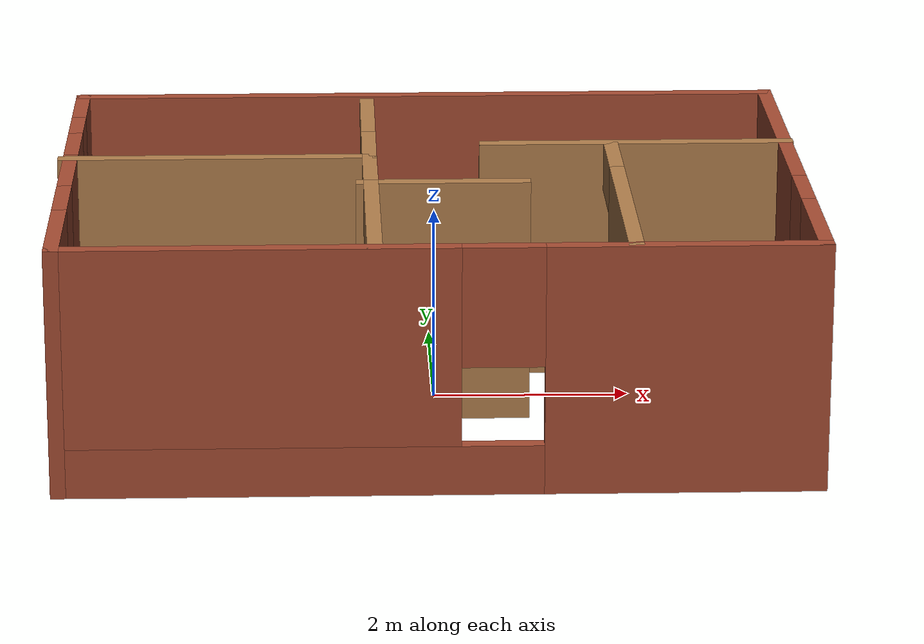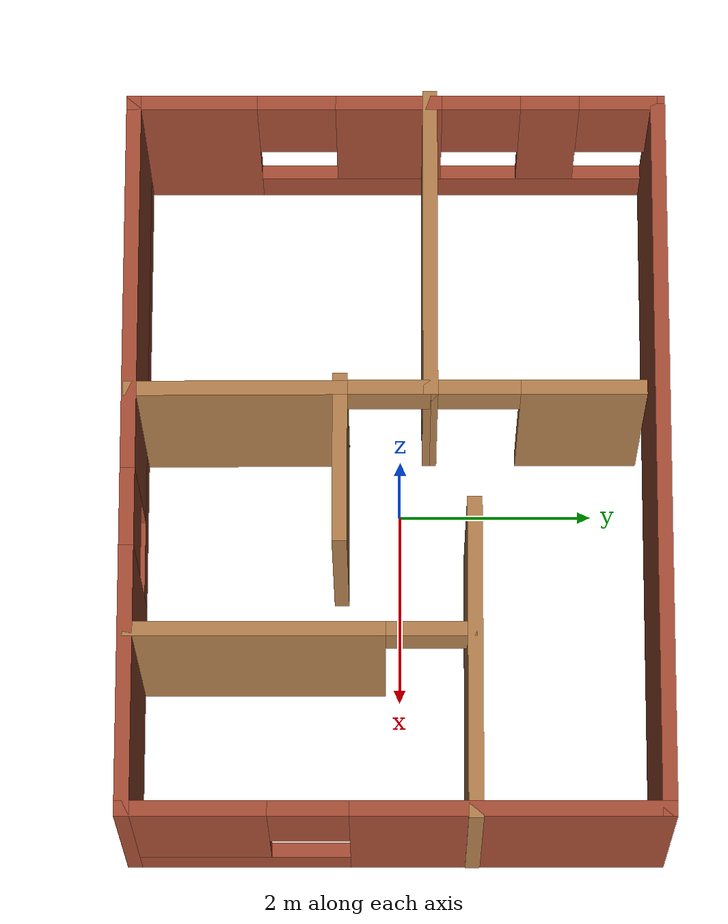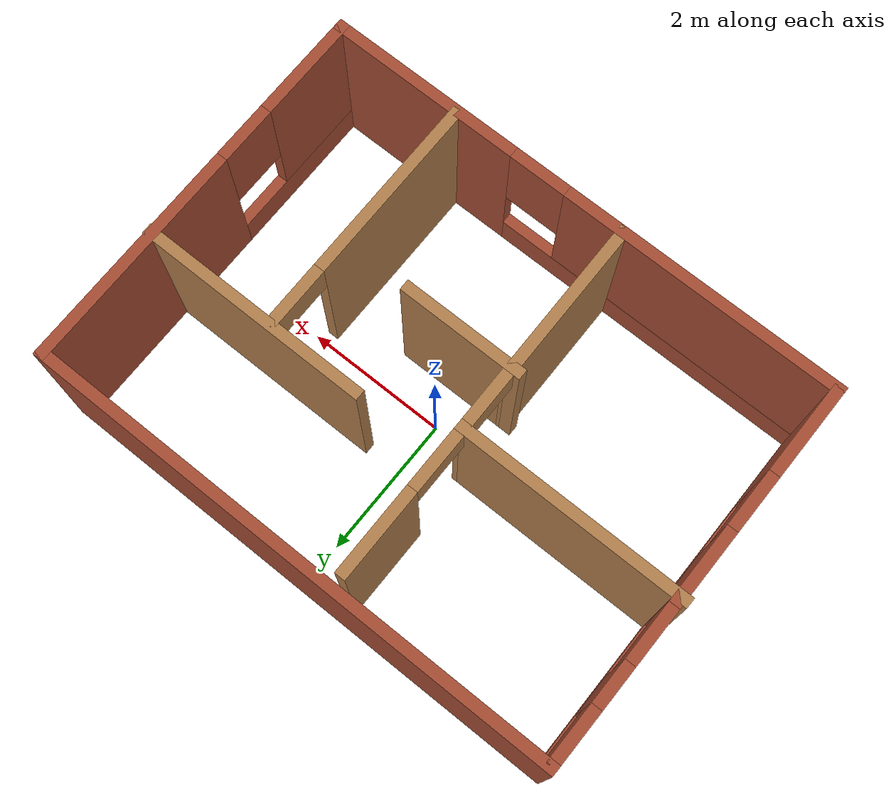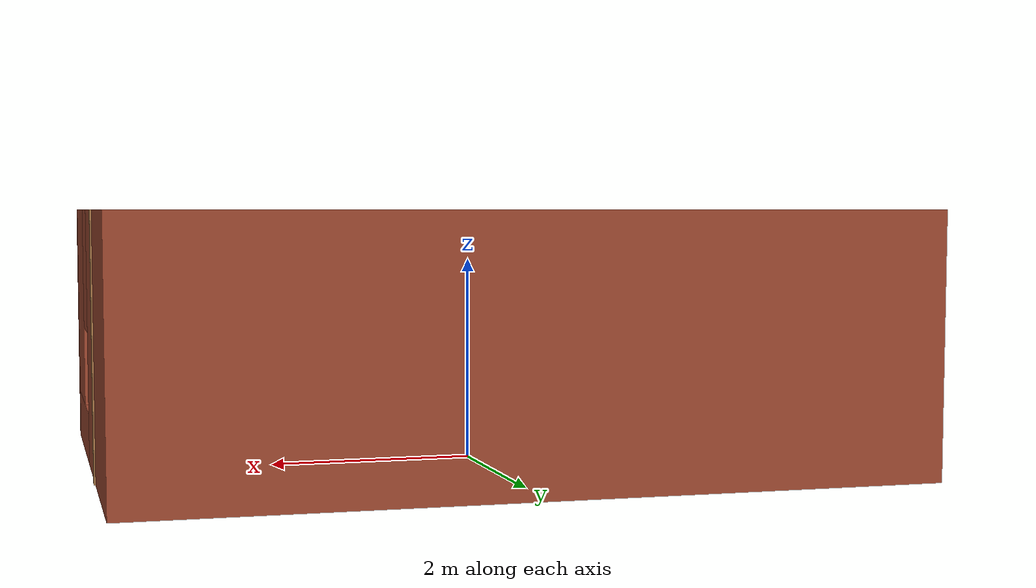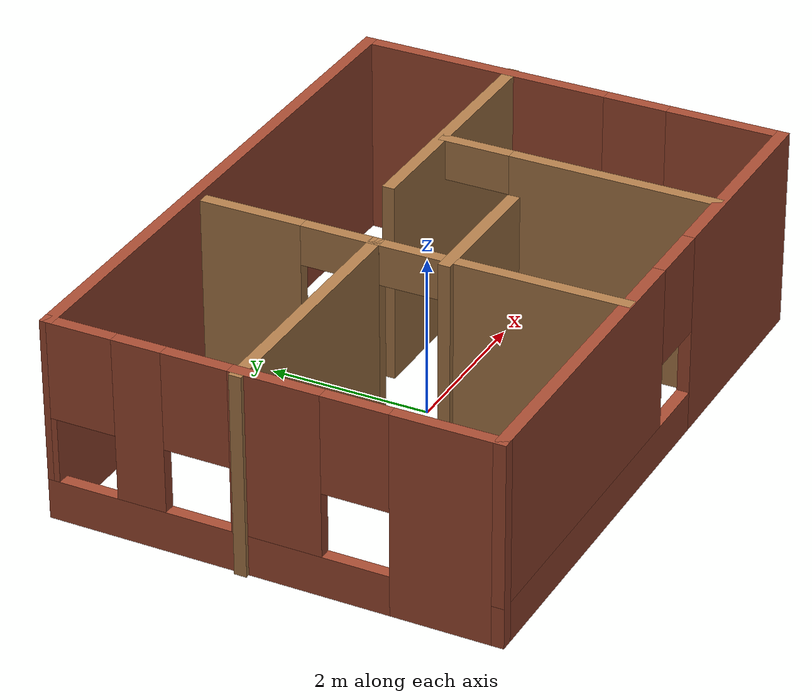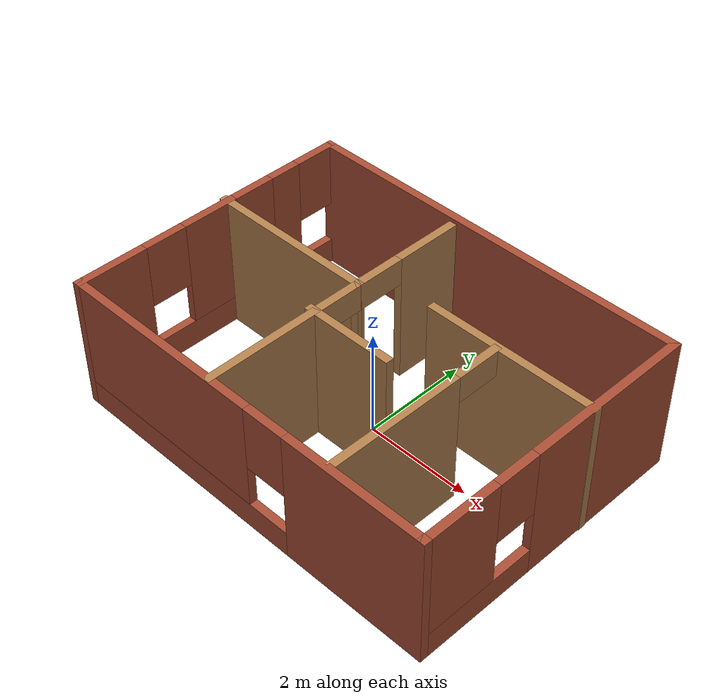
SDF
<?xml version='1.0'?>
<sdf version='1.7'>
  <model name='floor'>
    <pose>-0.04247 -0.043722 0 0 -0 0</pose>
    <link name='Wall_0'>
      <collision name='Wall_0_Collision'>
        <geometry>
          <box>
            <size>7.5 0.15 2.5</size>
          </box>
        </geometry>
        <pose>0 0 1.25 0 -0 0</pose>
      </collision>
      <visual name='Wall_0_Visual'>
        <pose>0 0 1.25 0 -0 0</pose>
        <geometry>
          <box>
            <size>7.5 0.15 2.5</size>
          </box>
        </geometry>
        <material>
          <script>
            <uri>file://media/materials/scripts/gazebo.material</uri>
            <name>Gazebo/Bricks</name>
          </script>
          <ambient>1 1 1 1</ambient>
        </material>
        <meta>
          <layer>0</layer>
        </meta>
      </visual>
      <pose>0.019577 2.675 0 0 -0 0</pose>
    </link>
    <link name='Wall_1'>
      <pose>3.69458 0 0 0 -0 -1.5708</pose>
      <visual name='Wall_1_Visual_0'>
        <pose>-1.146 0 1.25 0 -0 0</pose>
        <geometry>
          <box>
            <size>3.20799 0.15 2.5</size>
          </box>
        </geometry>
        <material>
          <script>
            <uri>file://media/materials/scripts/gazebo.material</uri>
            <name>Gazebo/Bricks</name>
          </script>
          <ambient>1 1 1 1</ambient>
        </material>
        <meta>
          <layer>0</layer>
        </meta>
      </visual>
      <collision name='Wall_1_Collision_0'>
        <geometry>
          <box>
            <size>3.20799 0.15 2.5</size>
          </box>
        </geometry>
        <pose>-1.146 0 1.25 0 -0 0</pose>
      </collision>
      <visual name='Wall_1_Visual_1'>
        <pose>1.604 0 0.25 0 -0 0</pose>
        <geometry>
          <box>
            <size>2.29201 0.15 0.5</size>
          </box>
        </geometry>
        <material>
          <script>
            <uri>file://media/materials/scripts/gazebo.material</uri>
            <name>Gazebo/Bricks</name>
          </script>
          <ambient>1 1 1 1</ambient>
        </material>
        <meta>
          <layer>0</layer>
        </meta>
      </visual>
      <collision name='Wall_1_Collision_1'>
        <geometry>
          <box>
            <size>2.29201 0.15 0.5</size>
          </box>
        </geometry>
        <pose>1.604 0 0.25 0 -0 0</pose>
      </collision>
      <visual name='Wall_1_Visual_2'>
        <pose>2.004 0 1.5 0 -0 0</pose>
        <geometry>
          <box>
            <size>1.49201 0.15 2</size>
          </box>
        </geometry>
        <material>
          <script>
            <uri>file://media/materials/scripts/gazebo.material</uri>
            <name>Gazebo/Bricks</name>
          </script>
          <ambient>1 1 1 1</ambient>
        </material>
        <meta>
          <layer>0</layer>
        </meta>
      </visual>
      <collision name='Wall_1_Collision_2'>
        <geometry>
          <box>
            <size>1.49201 0.15 2</size>
          </box>
        </geometry>
        <pose>2.004 0 1.5 0 -0 0</pose>
      </collision>
      <visual name='Wall_1_Visual_3'>
        <pose>0.857993 0 1.9 0 -0 0</pose>
        <geometry>
          <box>
            <size>0.8 0.15 1.2</size>
          </box>
        </geometry>
        <material>
          <script>
            <uri>file://media/materials/scripts/gazebo.material</uri>
            <name>Gazebo/Bricks</name>
          </script>
          <ambient>1 1 1 1</ambient>
        </material>
        <meta>
          <layer>0</layer>
        </meta>
      </visual>
      <collision name='Wall_1_Collision_3'>
        <geometry>
          <box>
            <size>0.8 0.15 1.2</size>
          </box>
        </geometry>
        <pose>0.857993 0 1.9 0 -0 0</pose>
      </collision>
    </link>
    <link name='Wall_13'>
      <pose>-0.601278 -1.15532 0 0 -0 1.57519</pose>
      <visual name='Wall_13_Visual_0'>
        <pose>-0.454803 0 1.25 0 -0 0</pose>
        <geometry>
          <box>
            <size>2.24871 0.15 2.5</size>
          </box>
        </geometry>
        <material>
          <script>
            <uri>file://media/materials/scripts/gazebo.material</uri>
            <name>Gazebo/Wood</name>
          </script>
          <ambient>1 1 1 1</ambient>
        </material>
        <meta>
          <layer>0</layer>
        </meta>
      </visual>
      <collision name='Wall_13_Collision_0'>
        <geometry>
          <box>
            <size>2.24871 0.15 2.5</size>
          </box>
        </geometry>
        <pose>-0.454803 0 1.25 0 -0 0</pose>
      </collision>
      <visual name='Wall_13_Visual_1'>
        <pose>1.57436 0 1.25 0 -0 0</pose>
        <geometry>
          <box>
            <size>0.009605 0.15 2.5</size>
          </box>
        </geometry>
        <material>
          <script>
            <uri>file://media/materials/scripts/gazebo.material</uri>
            <name>Gazebo/Wood</name>
          </script>
          <ambient>1 1 1 1</ambient>
        </material>
        <meta>
          <layer>0</layer>
        </meta>
      </visual>
      <collision name='Wall_13_Collision_1'>
        <geometry>
          <box>
            <size>0.009605 0.15 2.5</size>
          </box>
        </geometry>
        <pose>1.57436 0 1.25 0 -0 0</pose>
      </collision>
      <visual name='Wall_13_Visual_2'>
        <pose>1.11956 0 2.25 0 -0 0</pose>
        <geometry>
          <box>
            <size>0.9 0.15 0.5</size>
          </box>
        </geometry>
        <material>
          <script>
            <uri>file://media/materials/scripts/gazebo.material</uri>
            <name>Gazebo/Wood</name>
          </script>
          <ambient>1 1 1 1</ambient>
        </material>
        <meta>
          <layer>0</layer>
        </meta>
      </visual>
      <collision name='Wall_13_Collision_2'>
        <geometry>
          <box>
            <size>0.9 0.15 0.5</size>
          </box>
        </geometry>
        <pose>1.11956 0 2.25 0 -0 0</pose>
      </collision>
    </link>
    <link name='Wall_15'>
      <collision name='Wall_15_Collision'>
        <geometry>
          <box>
            <size>1.75 0.15 2.5</size>
          </box>
        </geometry>
        <pose>0 0 1.25 0 -0 0</pose>
      </collision>
      <visual name='Wall_15_Visual'>
        <pose>0 0 1.25 0 -0 0</pose>
        <geometry>
          <box>
            <size>1.75 0.15 2.5</size>
          </box>
        </geometry>
        <material>
          <script>
            <uri>file://media/materials/scripts/gazebo.material</uri>
            <name>Gazebo/Wood</name>
          </script>
          <ambient>1 1 1 1</ambient>
        </material>
        <meta>
          <layer>0</layer>
        </meta>
      </visual>
      <pose>0.117888 -0.560661 0 0 -0 0</pose>
    </link>
    <link name='Wall_17'>
      <pose>1.88893 -0.949489 0 0 -0 1.5708</pose>
      <visual name='Wall_17_Visual_0'>
        <pose>-0.450845 0 1.25 0 -0 0</pose>
        <geometry>
          <box>
            <size>2.59831 0.15 2.5</size>
          </box>
        </geometry>
        <material>
          <script>
            <uri>file://media/materials/scripts/gazebo.material</uri>
            <name>Gazebo/Wood</name>
          </script>
          <ambient>1 1 1 1</ambient>
        </material>
        <meta>
          <layer>0</layer>
        </meta>
      </visual>
      <collision name='Wall_17_Collision_0'>
        <geometry>
          <box>
            <size>2.59831 0.15 2.5</size>
          </box>
        </geometry>
        <pose>-0.450845 0 1.25 0 -0 0</pose>
      </collision>
      <visual name='Wall_17_Visual_1'>
        <pose>1.74916 0 1.25 0 -0 0</pose>
        <geometry>
          <box>
            <size>0.001689 0.15 2.5</size>
          </box>
        </geometry>
        <material>
          <script>
            <uri>file://media/materials/scripts/gazebo.material</uri>
            <name>Gazebo/Wood</name>
          </script>
          <ambient>1 1 1 1</ambient>
        </material>
        <meta>
          <layer>0</layer>
        </meta>
      </visual>
      <collision name='Wall_17_Collision_1'>
        <geometry>
          <box>
            <size>0.001689 0.15 2.5</size>
          </box>
        </geometry>
        <pose>1.74916 0 1.25 0 -0 0</pose>
      </collision>
      <visual name='Wall_17_Visual_2'>
        <pose>1.29831 0 2.25 0 -0 0</pose>
        <geometry>
          <box>
            <size>0.9 0.15 0.5</size>
          </box>
        </geometry>
        <material>
          <script>
            <uri>file://media/materials/scripts/gazebo.material</uri>
            <name>Gazebo/Wood</name>
          </script>
          <ambient>1 1 1 1</ambient>
        </material>
        <meta>
          <layer>0</layer>
        </meta>
      </visual>
      <collision name='Wall_17_Collision_2'>
        <geometry>
          <box>
            <size>0.9 0.15 0.5</size>
          </box>
        </geometry>
        <pose>1.29831 0 2.25 0 -0 0</pose>
      </collision>
    </link>
    <link name='Wall_3'>
      <pose>0.019577 -2.675 0 0 -0 3.14159</pose>
      <visual name='Wall_3_Visual_0'>
        <pose>-2.38003 0 1.25 0 -0 0</pose>
        <geometry>
          <box>
            <size>2.73994 0.15 2.5</size>
          </box>
        </geometry>
        <material>
          <script>
            <uri>file://media/materials/scripts/gazebo.material</uri>
            <name>Gazebo/Bricks</name>
          </script>
          <ambient>1 1 1 1</ambient>
        </material>
        <meta>
          <layer>0</layer>
        </meta>
      </visual>
      <collision name='Wall_3_Collision_0'>
        <geometry>
          <box>
            <size>2.73994 0.15 2.5</size>
          </box>
        </geometry>
        <pose>-2.38003 0 1.25 0 -0 0</pose>
      </collision>
      <visual name='Wall_3_Visual_1'>
        <pose>1.36997 0 0.25 0 -0 0</pose>
        <geometry>
          <box>
            <size>4.76006 0.15 0.5</size>
          </box>
        </geometry>
        <material>
          <script>
            <uri>file://media/materials/scripts/gazebo.material</uri>
            <name>Gazebo/Bricks</name>
          </script>
          <ambient>1 1 1 1</ambient>
        </material>
        <meta>
          <layer>0</layer>
        </meta>
      </visual>
      <collision name='Wall_3_Collision_1'>
        <geometry>
          <box>
            <size>4.76006 0.15 0.5</size>
          </box>
        </geometry>
        <pose>1.36997 0 0.25 0 -0 0</pose>
      </collision>
      <visual name='Wall_3_Visual_2'>
        <pose>1.76997 0 1.5 0 -0 0</pose>
        <geometry>
          <box>
            <size>3.96007 0.15 2</size>
          </box>
        </geometry>
        <material>
          <script>
            <uri>file://media/materials/scripts/gazebo.material</uri>
            <name>Gazebo/Bricks</name>
          </script>
          <ambient>1 1 1 1</ambient>
        </material>
        <meta>
          <layer>0</layer>
        </meta>
      </visual>
      <collision name='Wall_3_Collision_2'>
        <geometry>
          <box>
            <size>3.96007 0.15 2</size>
          </box>
        </geometry>
        <pose>1.76997 0 1.5 0 -0 0</pose>
      </collision>
      <visual name='Wall_3_Visual_3'>
        <pose>-0.610065 0 1.9 0 -0 0</pose>
        <geometry>
          <box>
            <size>0.8 0.15 1.2</size>
          </box>
        </geometry>
        <material>
          <script>
            <uri>file://media/materials/scripts/gazebo.material</uri>
            <name>Gazebo/Bricks</name>
          </script>
          <ambient>1 1 1 1</ambient>
        </material>
        <meta>
          <layer>0</layer>
        </meta>
      </visual>
      <collision name='Wall_3_Collision_3'>
        <geometry>
          <box>
            <size>0.8 0.15 1.2</size>
          </box>
        </geometry>
        <pose>-0.610065 0 1.9 0 -0 0</pose>
      </collision>
    </link>
    <link name='Wall_4'>
      <pose>-3.65542 0 0 0 -0 1.5708</pose>
      <visual name='Wall_4_Visual_0'>
        <pose>-2.0827 0 1.25 0 -0 0</pose>
        <geometry>
          <box>
            <size>1.3346 0.15 2.5</size>
          </box>
        </geometry>
        <material>
          <script>
            <uri>file://media/materials/scripts/gazebo.material</uri>
            <name>Gazebo/Bricks</name>
          </script>
          <ambient>1 1 1 1</ambient>
        </material>
        <meta>
          <layer>0</layer>
        </meta>
      </visual>
      <collision name='Wall_4_Collision_0'>
        <geometry>
          <box>
            <size>1.3346 0.15 2.5</size>
          </box>
        </geometry>
        <pose>-2.0827 0 1.25 0 -0 0</pose>
      </collision>
      <visual name='Wall_4_Visual_1'>
        <pose>0.667298 0 0.25 0 -0 0</pose>
        <geometry>
          <box>
            <size>4.1654 0.15 0.5</size>
          </box>
        </geometry>
        <material>
          <script>
            <uri>file://media/materials/scripts/gazebo.material</uri>
            <name>Gazebo/Bricks</name>
          </script>
          <ambient>1 1 1 1</ambient>
        </material>
        <meta>
          <layer>0</layer>
        </meta>
      </visual>
      <collision name='Wall_4_Collision_1'>
        <geometry>
          <box>
            <size>4.1654 0.15 0.5</size>
          </box>
        </geometry>
        <pose>0.667298 0 0.25 0 -0 0</pose>
      </collision>
      <visual name='Wall_4_Visual_2'>
        <pose>-0.07094 0 1.5 0 -0 0</pose>
        <geometry>
          <box>
            <size>1.08893 0.15 2</size>
          </box>
        </geometry>
        <material>
          <script>
            <uri>file://media/materials/scripts/gazebo.material</uri>
            <name>Gazebo/Bricks</name>
          </script>
          <ambient>1 1 1 1</ambient>
        </material>
        <meta>
          <layer>0</layer>
        </meta>
      </visual>
      <collision name='Wall_4_Collision_2'>
        <geometry>
          <box>
            <size>1.08893 0.15 2</size>
          </box>
        </geometry>
        <pose>-0.07094 0 1.5 0 -0 0</pose>
      </collision>
      <visual name='Wall_4_Visual_3'>
        <pose>1.57313 0 1.5 0 -0 0</pose>
        <geometry>
          <box>
            <size>0.599205 0.15 2</size>
          </box>
        </geometry>
        <material>
          <script>
            <uri>file://media/materials/scripts/gazebo.material</uri>
            <name>Gazebo/Bricks</name>
          </script>
          <ambient>1 1 1 1</ambient>
        </material>
        <meta>
          <layer>0</layer>
        </meta>
      </visual>
      <collision name='Wall_4_Collision_3'>
        <geometry>
          <box>
            <size>0.599205 0.15 2</size>
          </box>
        </geometry>
        <pose>1.57313 0 1.5 0 -0 0</pose>
      </collision>
      <visual name='Wall_4_Visual_4'>
        <pose>2.71136 0 1.5 0 -0 0</pose>
        <geometry>
          <box>
            <size>0.077271 0.15 2</size>
          </box>
        </geometry>
        <material>
          <script>
            <uri>file://media/materials/scripts/gazebo.material</uri>
            <name>Gazebo/Bricks</name>
          </script>
          <ambient>1 1 1 1</ambient>
        </material>
        <meta>
          <layer>0</layer>
        </meta>
      </visual>
      <collision name='Wall_4_Collision_4'>
        <geometry>
          <box>
            <size>0.077271 0.15 2</size>
          </box>
        </geometry>
        <pose>2.71136 0 1.5 0 -0 0</pose>
      </collision>
      <visual name='Wall_4_Visual_5'>
        <pose>-1.0154 0 1.9 0 -0 0</pose>
        <geometry>
          <box>
            <size>0.8 0.15 1.2</size>
          </box>
        </geometry>
        <material>
          <script>
            <uri>file://media/materials/scripts/gazebo.material</uri>
            <name>Gazebo/Bricks</name>
          </script>
          <ambient>1 1 1 1</ambient>
        </material>
        <meta>
          <layer>0</layer>
        </meta>
      </visual>
      <collision name='Wall_4_Collision_5'>
        <geometry>
          <box>
            <size>0.8 0.15 1.2</size>
          </box>
        </geometry>
        <pose>-1.0154 0 1.9 0 -0 0</pose>
      </collision>
      <visual name='Wall_4_Visual_6'>
        <pose>0.873524 0 1.9 0 -0 0</pose>
        <geometry>
          <box>
            <size>0.8 0.15 1.2</size>
          </box>
        </geometry>
        <material>
          <script>
            <uri>file://media/materials/scripts/gazebo.material</uri>
            <name>Gazebo/Bricks</name>
          </script>
          <ambient>1 1 1 1</ambient>
        </material>
        <meta>
          <layer>0</layer>
        </meta>
      </visual>
      <collision name='Wall_4_Collision_6'>
        <geometry>
          <box>
            <size>0.8 0.15 1.2</size>
          </box>
        </geometry>
        <pose>0.873524 0 1.9 0 -0 0</pose>
      </collision>
      <visual name='Wall_4_Visual_7'>
        <pose>2.27273 0 1.9 0 -0 0</pose>
        <geometry>
          <box>
            <size>0.8 0.15 1.2</size>
          </box>
        </geometry>
        <material>
          <script>
            <uri>file://media/materials/scripts/gazebo.material</uri>
            <name>Gazebo/Bricks</name>
          </script>
          <ambient>1 1 1 1</ambient>
        </material>
        <meta>
          <layer>0</layer>
        </meta>
      </visual>
      <collision name='Wall_4_Collision_7'>
        <geometry>
          <box>
            <size>0.8 0.15 1.2</size>
          </box>
        </geometry>
        <pose>2.27273 0 1.9 0 -0 0</pose>
      </collision>
    </link>
    <link name='Wall_6'>
      <collision name='Wall_6_Collision'>
        <geometry>
          <box>
            <size>3.25 0.15 2.5</size>
          </box>
        </geometry>
        <pose>0 0 1.25 0 -0 0</pose>
      </collision>
      <visual name='Wall_6_Visual'>
        <pose>0 0 1.25 0 -0 0</pose>
        <geometry>
          <box>
            <size>3.25 0.15 2.5</size>
          </box>
        </geometry>
        <material>
          <script>
            <uri>file://media/materials/scripts/gazebo.material</uri>
            <name>Gazebo/Wood</name>
          </script>
          <ambient>1 1 1 1</ambient>
        </material>
        <meta>
          <layer>0</layer>
        </meta>
      </visual>
      <pose>-2.15789 0.348822 0 0 -0 0</pose>
    </link>
    <link name='Wall_7'>
      <pose>-0.607893 1.39882 0 0 -0 1.5708</pose>
      <visual name='Wall_7_Visual_0'>
        <pose>-1.08513 0 1.25 0 -0 0</pose>
        <geometry>
          <box>
            <size>0.079742 0.15 2.5</size>
          </box>
        </geometry>
        <material>
          <script>
            <uri>file://media/materials/scripts/gazebo.material</uri>
            <name>Gazebo/Wood</name>
          </script>
          <ambient>1 1 1 1</ambient>
        </material>
        <meta>
          <layer>0</layer>
        </meta>
      </visual>
      <collision name='Wall_7_Collision_0'>
        <geometry>
          <box>
            <size>0.079742 0.15 2.5</size>
          </box>
        </geometry>
        <pose>-1.08513 0 1.25 0 -0 0</pose>
      </collision>
      <visual name='Wall_7_Visual_1'>
        <pose>0.489871 0 1.25 0 -0 0</pose>
        <geometry>
          <box>
            <size>1.27026 0.15 2.5</size>
          </box>
        </geometry>
        <material>
          <script>
            <uri>file://media/materials/scripts/gazebo.material</uri>
            <name>Gazebo/Wood</name>
          </script>
          <ambient>1 1 1 1</ambient>
        </material>
        <meta>
          <layer>0</layer>
        </meta>
      </visual>
      <collision name='Wall_7_Collision_1'>
        <geometry>
          <box>
            <size>1.27026 0.15 2.5</size>
          </box>
        </geometry>
        <pose>0.489871 0 1.25 0 -0 0</pose>
      </collision>
      <visual name='Wall_7_Visual_2'>
        <pose>-0.595258 0 2.25 0 -0 0</pose>
        <geometry>
          <box>
            <size>0.9 0.15 0.5</size>
          </box>
        </geometry>
        <material>
          <script>
            <uri>file://media/materials/scripts/gazebo.material</uri>
            <name>Gazebo/Wood</name>
          </script>
          <ambient>1 1 1 1</ambient>
        </material>
        <meta>
          <layer>0</layer>
        </meta>
      </visual>
      <collision name='Wall_7_Collision_2'>
        <geometry>
          <box>
            <size>0.9 0.15 0.5</size>
          </box>
        </geometry>
        <pose>-0.595258 0 2.25 0 -0 0</pose>
      </collision>
    </link>
    <link name='Wall_9'>
      <collision name='Wall_9_Collision'>
        <geometry>
          <box>
            <size>3.25 0.15 2.5</size>
          </box>
        </geometry>
        <pose>0 0 1.25 0 -0 0</pose>
      </collision>
      <visual name='Wall_9_Visual'>
        <pose>0 0 1.25 0 -0 0</pose>
        <geometry>
          <box>
            <size>3.25 0.15 2.5</size>
          </box>
        </geometry>
        <material>
          <script>
            <uri>file://media/materials/scripts/gazebo.material</uri>
            <name>Gazebo/Wood</name>
          </script>
          <ambient>1 1 1 1</ambient>
        </material>
        <meta>
          <layer>0</layer>
        </meta>
      </visual>
      <pose>2.15789 0.786073 0 0 -0 3.14159</pose>
    </link>
    <static>1</static>
  </model>
</sdf>
